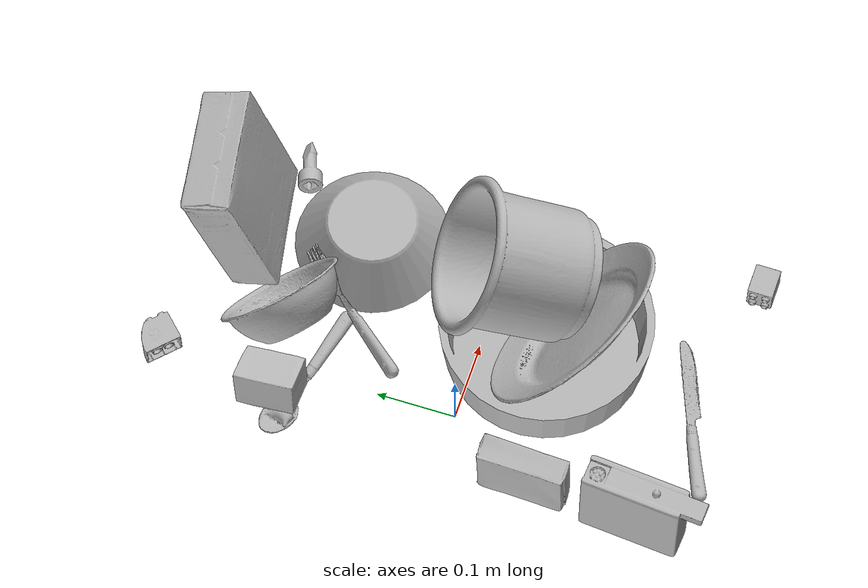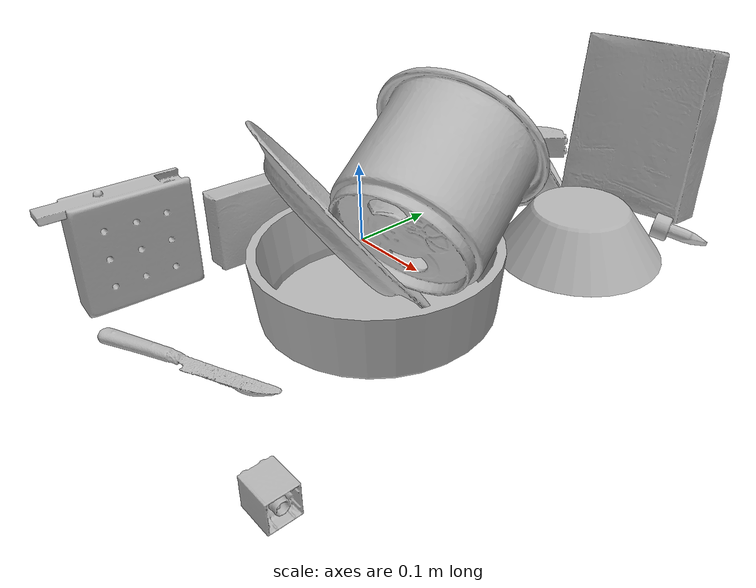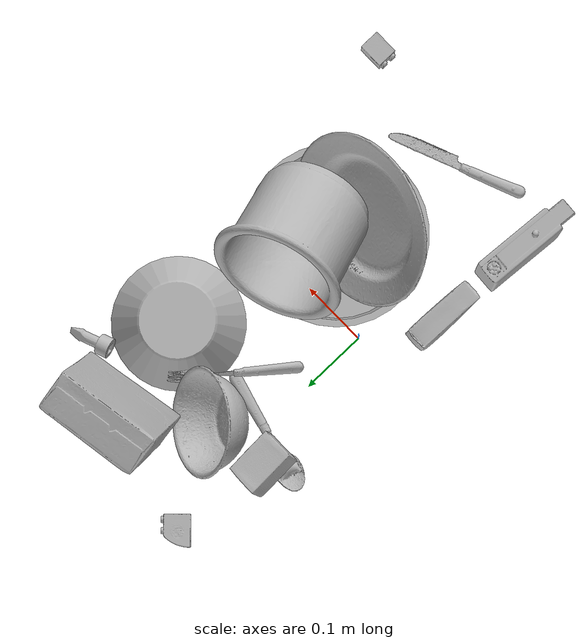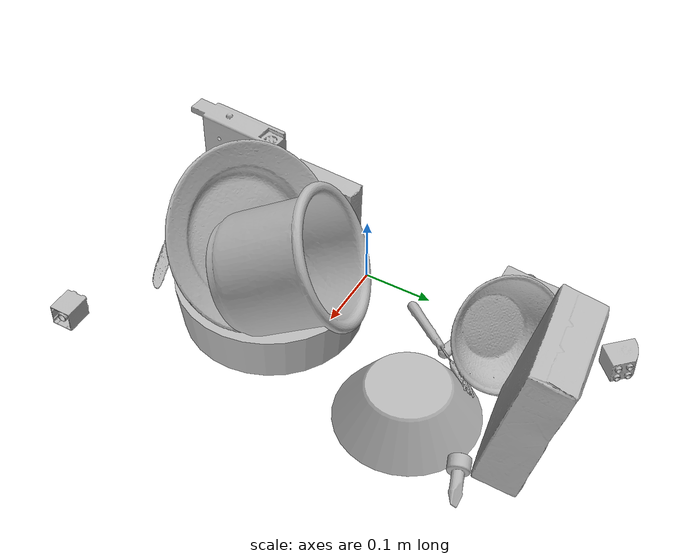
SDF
<sdf version="1.4">
  <world name="default">
    <light name="light1" type="point">
      <pose>0 0 1 0 0 0</pose>
      <diffuse>3 3 3 1</diffuse>
      <specular>3 3 3 1</specular>
    </light>
    <light name="light2" type="point">
      <pose>0 0.5 2 0 0 0</pose>
      <diffuse>1 1 1 1</diffuse>
      <specular>1 1 1 1</specular>
    </light>
    <light name="light3" type="point">
      <pose>0 0.5 2 0 0 0</pose>
      <diffuse>3 3 3 1</diffuse>
      <specular>3 3 3 1</specular>
    </light>
    <scene>
      <ambient>0.7 0.7 0.7</ambient>
    </scene>
    <model name="plate1">
      <link name="link_plate1">
        <collision name="default">
          <geometry>
            <mesh>
              <uri>model://pan_tefal/collision_meshes/collision.obj</uri>
              <scale>1.0 1.0 1.0</scale>
            </mesh>
          </geometry>
          <surface>
            <friction>
              <ode>
                <mu>0.5</mu>
                <mu2>0.5</mu2>
              </ode>
            </friction>
          <contact>
        <ode>
            <max_vel>0</max_vel>
            <min_depth>0.0001</min_depth>
            <kp>1e8</kp>
        </ode>
    </contact></surface>
        </collision>
        <visual name="default">
          <geometry>
            <mesh>
              <uri>model://pan_tefal/visual_meshes/visual.dae</uri>
              <scale>1.0 1.0 1.0</scale>
            </mesh>
          </geometry>
        </visual>
        <inertial>
          <mass>0.7050602436065674</mass>
          <pose>-0.00018002082651946694 3.279098018538207e-05 -0.008514933288097382 0.0008190340203057913 -0.0003301288692481796 -0.3318720847028622</pose>
          <inertia>
            <ixx>0.0048669963</ixx>
            <iyy>0.0048983735</iyy>
            <izz>0.008959204</izz>
            <ixy>0</ixy>
            <ixz>0</ixz>
            <iyz>0</iyz>
          </inertia>
        </inertial>
      </link>
      <pose>0.12451103329658508 -0.07719253748655319 0.03804996609687805 -3.400359482425797e-06 -1.981518553057769e-08 2.7831770010465036</pose>
    </model>
    <model name="plate2">
      <link name="link_plate2">
        <collision name="default">
          <geometry>
            <mesh>
              <uri>model://plate/collision_meshes/collision.obj</uri>
              <scale>1.0 1.0 1.0</scale>
            </mesh>
          </geometry>
          <surface>
            <friction>
              <ode>
                <mu>0.5</mu>
                <mu2>0.5</mu2>
              </ode>
            </friction>
          <contact>
        <ode>
            <max_vel>0</max_vel>
            <min_depth>0.0001</min_depth>
            <kp>1e8</kp>
        </ode>
    </contact></surface>
        </collision>
        <visual name="default">
          <geometry>
            <mesh>
              <uri>model://plate/visual_meshes/visual.dae</uri>
              <scale>1.0 1.0 1.0</scale>
            </mesh>
          </geometry>
        </visual>
        <inertial>
          <mass>0.2442774623632431</mass>
          <pose>-0.0006044568726792932 0.0002782584633678198 -0.0010561984963715076 0.0022187778178748897 -0.0032254919076997847 0.45261061169843664</pose>
          <inertia>
            <ixx>0.0011427345</ixx>
            <iyy>0.001131805</iyy>
            <izz>0.002235018</izz>
            <ixy>0</ixy>
            <ixz>0</ixz>
            <iyz>0</iyz>
          </inertia>
        </inertial>
      </link>
      <pose>0.11184891313314438 -0.11985953152179718 0.1096838042140007 -0.9288108312663818 0.01614466425789696 -0.28865059567174156</pose>
    </model>
    <model name="bowl1">
      <link name="link_bowl1">
        <collision name="default">
          <geometry>
            <mesh>
              <uri>model://bowl_a/collision_meshes/collision.obj</uri>
              <scale>1.0 1.0 1.0</scale>
            </mesh>
          </geometry>
          <surface>
            <friction>
              <ode>
                <mu>0.5</mu>
                <mu2>0.5</mu2>
              </ode>
            </friction>
          <contact>
        <ode>
            <max_vel>0</max_vel>
            <min_depth>0.0001</min_depth>
            <kp>1e8</kp>
        </ode>
    </contact></surface>
        </collision>
        <visual name="default">
          <geometry>
            <mesh>
              <uri>model://bowl_a/visual_meshes/visual.dae</uri>
              <scale>1.0 1.0 1.0</scale>
            </mesh>
          </geometry>
        </visual>
        <inertial>
          <mass>0.4025156497955322</mass>
          <pose>0.00027867371682077646 4.731032458948903e-05 -0.0013765298062935472 -0.00098054011869292 -0.0010938175729232503 -0.19123339485915475</pose>
          <inertia>
            <ixx>0.0011459808</ixx>
            <iyy>0.0011530165</iyy>
            <izz>0.0020381706</izz>
            <ixy>0</ixy>
            <ixz>0</ixz>
            <iyz>0</iyz>
          </inertia>
        </inertial>
      </link>
      <pose>0.19628919661045074 0.17080269753932953 0.029708685353398323 -3.1390927129637847 -0.0010534100431967735 -2.64056885148524</pose>
    </model>
    <model name="bowl2">
      <link name="link_bowl2">
        <collision name="default">
          <geometry>
            <mesh>
              <uri>model://bowl/collision_meshes/collision.obj</uri>
              <scale>1.0 1.0 1.0</scale>
            </mesh>
          </geometry>
          <surface>
            <friction>
              <ode>
                <mu>0.5</mu>
                <mu2>0.5</mu2>
              </ode>
            </friction>
          <contact>
        <ode>
            <max_vel>0</max_vel>
            <min_depth>0.0001</min_depth>
            <kp>1e8</kp>
        </ode>
    </contact></surface>
        </collision>
        <visual name="default">
          <geometry>
            <mesh>
              <uri>model://bowl/visual_meshes/visual.dae</uri>
              <scale>1.0 1.0 1.0</scale>
            </mesh>
          </geometry>
        </visual>
        <inertial>
          <mass>0.04694162309169769</mass>
          <pose>0.00020445318659767509 -0.001030211104080081 -0.0008042642730288208 -0.01576400215318024 0.014546874726031786 0.7140460761636136</pose>
          <inertia>
            <ixx>0.0001078286</ixx>
            <iyy>0.000105419305</iyy>
            <izz>0.00018140484</izz>
            <ixy>0</ixy>
            <ixz>0</ixz>
            <iyz>0</iyz>
          </inertia>
        </inertial>
      </link>
      <pose>0.0536455400288105 0.2317802459001541 0.057759132236242294 0.9524842523503608 -0.4577522768125154 2.7599572885010217</pose>
    </model>
    <model name="silverware1">
      <link name="link_silverware1">
        <collision name="default">
          <geometry>
            <mesh>
              <uri>model://spoon/collision_meshes/collision.obj</uri>
              <scale>1.0 1.0 1.0</scale>
            </mesh>
          </geometry>
          <surface>
            <friction>
              <ode>
                <mu>0.5</mu>
                <mu2>0.5</mu2>
              </ode>
            </friction>
          <contact>
        <ode>
            <max_vel>0</max_vel>
            <min_depth>0.0001</min_depth>
            <kp>1e8</kp>
        </ode>
    </contact></surface>
        </collision>
        <visual name="default">
          <geometry>
            <mesh>
              <uri>model://spoon/visual_meshes/visual.dae</uri>
              <scale>1.0 1.0 1.0</scale>
            </mesh>
          </geometry>
        </visual>
        <inertial>
          <mass>0.03710600733757019</mass>
          <pose>-0.005526318680495024 -0.0016034168656915426 -0.0007271650829352438 0.03521602429168162 -0.03906583039209626 0.006150612964611125</pose>
          <inertia>
            <ixx>2.0638956e-06</ixx>
            <iyy>0.00014118708</iyy>
            <izz>0.00014220492</izz>
            <ixy>0</ixy>
            <ixz>0</ixz>
            <iyz>0</iyz>
          </inertia>
        </inertial>
      </link>
      <pose>-0.0053451950661838055 0.1874048411846161 0.008384764194488525 0.006278884288988027 0.026902368653521667 2.8866457869870157</pose>
    </model>
    <model name="box1">
      <link name="link_box1">
        <collision name="default">
          <geometry>
            <mesh>
              <uri>model://cracker_box/collision_meshes/collision.obj</uri>
              <scale>1.0 1.0 1.0</scale>
            </mesh>
          </geometry>
          <surface>
            <friction>
              <ode>
                <mu>0.5</mu>
                <mu2>0.5</mu2>
              </ode>
            </friction>
          <contact>
        <ode>
            <max_vel>0</max_vel>
            <min_depth>0.0001</min_depth>
            <kp>1e8</kp>
        </ode>
    </contact></surface>
        </collision>
        <visual name="default">
          <geometry>
            <mesh>
              <uri>model://cracker_box/visual_meshes/visual.dae</uri>
              <scale>1.0 1.0 1.0</scale>
            </mesh>
          </geometry>
        </visual>
        <inertial>
          <mass>2.252173662185669</mass>
          <pose>0.0009464137838222086 0.0002543425071053207 -0.0017029535956680775 -0.000316207513865998 -0.011106489600465836 0.0025467954670329632</pose>
          <inertia>
            <ixx>0.0057285246</ixx>
            <iyy>0.00945892</iyy>
            <izz>0.013498746</izz>
            <ixy>0</ixy>
            <ixz>0</ixz>
            <iyz>0</iyz>
          </inertia>
        </inertial>
      </link>
      <pose>0.16511589288711548 0.33166223764419556 0.10841579735279083 -3.0679717978011842 1.308318660394251 -1.330435257714191</pose>
    </model>
    <model name="box2">
      <link name="link_box2">
        <collision name="default">
          <geometry>
            <mesh>
              <uri>model://pudding_box/collision_meshes/collision.obj</uri>
              <scale>1.0 1.0 1.0</scale>
            </mesh>
          </geometry>
          <surface>
            <friction>
              <ode>
                <mu>0.5</mu>
                <mu2>0.5</mu2>
              </ode>
            </friction>
          <contact>
        <ode>
            <max_vel>0</max_vel>
            <min_depth>0.0001</min_depth>
            <kp>1e8</kp>
        </ode>
    </contact></surface>
        </collision>
        <visual name="default">
          <geometry>
            <mesh>
              <uri>model://pudding_box/visual_meshes/visual.dae</uri>
              <scale>1.0 1.0 1.0</scale>
            </mesh>
          </geometry>
        </visual>
        <inertial>
          <mass>0.38795164227485657</mass>
          <pose>0.0004894821904599667 0.0008067885646596551 -0.0005188827635720372 0.005213102258195884 -0.006603798723254801 0.020079825158131615</pose>
          <inertia>
            <ixx>0.00043855933</ixx>
            <iyy>0.00029506587</iyy>
            <izz>0.0006476475</izz>
            <ixy>0</ixy>
            <ixz>0</ixz>
            <iyz>0</iyz>
          </inertia>
        </inertial>
      </link>
      <pose>-0.06282428652048111 -0.10707709938287735 0.04517776519060135 -0.4108275939119818 1.549435817879998 -0.44359481619891505</pose>
    </model>
    <model name="cup1">
      <link name="link_cup1">
        <collision name="default">
          <geometry>
            <mesh>
              <uri>model://i_cups/collision_meshes/collision.obj</uri>
              <scale>2.0 2.0 2.0</scale>
            </mesh>
          </geometry>
          <surface>
            <friction>
              <ode>
                <mu>0.5</mu>
                <mu2>0.5</mu2>
              </ode>
            </friction>
          <contact>
        <ode>
            <max_vel>0</max_vel>
            <min_depth>0.0001</min_depth>
            <kp>1e8</kp>
        </ode>
    </contact></surface>
        </collision>
        <visual name="default">
          <geometry>
            <mesh>
              <uri>model://i_cups/visual_meshes/visual.dae</uri>
              <scale>2.0 2.0 2.0</scale>
            </mesh>
          </geometry>
        </visual>
        <inertial>
          <mass>0.8781275153160095</mass>
          <pose>0.00022480404004454613 0.0003359464171808213 -0.0017158013070002198 -0.028983801808433914 -0.03987279960401974 -0.34589629987983705</pose>
          <inertia>
            <ixx>0.004863122</ixx>
            <iyy>0.004905971</iyy>
            <izz>0.005435325</izz>
            <ixy>0</ixy>
            <ixz>0</ixz>
            <iyz>0</iyz>
          </inertia>
        </inertial>
      </link>
      <pose>0.157593235373497 -0.03192514926195145 0.13509654998779297 -0.6176456710454504 1.004202952601025 1.1803081487647131</pose>
    </model>
    <model name="silverware2">
      <link name="link_silverware2">
        <collision name="default">
          <geometry>
            <mesh>
              <uri>model://fork/collision_meshes/collision.obj</uri>
              <scale>1.0 1.0 1.0</scale>
            </mesh>
          </geometry>
          <surface>
            <friction>
              <ode>
                <mu>0.5</mu>
                <mu2>0.5</mu2>
              </ode>
            </friction>
          <contact>
        <ode>
            <max_vel>0</max_vel>
            <min_depth>0.0001</min_depth>
            <kp>1e8</kp>
        </ode>
    </contact></surface>
        </collision>
        <visual name="default">
          <geometry>
            <mesh>
              <uri>model://fork/visual_meshes/visual.dae</uri>
              <scale>1.0 1.0 1.0</scale>
            </mesh>
          </geometry>
        </visual>
        <inertial>
          <mass>0.027322283014655113</mass>
          <pose>-0.02957003377377987 0.0004658822435885668 0.0003218860656488687 -0.013551502868568713 -0.01097783467120204 0.01445389601768567</pose>
          <inertia>
            <ixx>9.578007e-07</ixx>
            <iyy>7.133063e-05</iyy>
            <izz>7.175903e-05</izz>
            <ixy>0</ixy>
            <ixz>0</ixz>
            <iyz>0</iyz>
          </inertia>
        </inertial>
      </link>
      <pose>0.08593498170375824 0.16219082474708557 0.021508794277906418 2.2478412580342964 -0.14219643129352305 0.9088989068421033</pose>
    </model>
    <model name="silverware3">
      <link name="link_silverware3">
        <collision name="default">
          <geometry>
            <mesh>
              <uri>model://knife/collision_meshes/collision.obj</uri>
              <scale>1.0 1.0 1.0</scale>
            </mesh>
          </geometry>
          <surface>
            <friction>
              <ode>
                <mu>0.5</mu>
                <mu2>0.5</mu2>
              </ode>
            </friction>
          <contact>
        <ode>
            <max_vel>0</max_vel>
            <min_depth>0.0001</min_depth>
            <kp>1e8</kp>
        </ode>
    </contact></surface>
        </collision>
        <visual name="default">
          <geometry>
            <mesh>
              <uri>model://knife/visual_meshes/visual.dae</uri>
              <scale>1.0 1.0 1.0</scale>
            </mesh>
          </geometry>
        </visual>
        <inertial>
          <mass>0.036400385200977325</mass>
          <pose>-0.02378525584936142 0.0015275126788765192 5.0620175898075104e-05 0.07305876248658423 0.017248417790611748 -0.007409819472147862</pose>
          <inertia>
            <ixx>1.0331904e-06</ixx>
            <iyy>0.00013984439</iyy>
            <izz>0.00014017712</izz>
            <ixy>0</ixy>
            <ixz>0</ixz>
            <iyz>0</iyz>
          </inertia>
        </inertial>
      </link>
      <pose>0.08139098435640335 -0.2796620726585388 0.007946574129164219 -0.023844839548736643 -0.014543234123507819 0.37570204864915874</pose>
    </model>
    <model name="toy1">
      <link name="link_toy1">
        <collision name="default">
          <geometry>
            <mesh>
              <uri>model://d_lego_duplo/collision_meshes/collision.obj</uri>
              <scale>1.0 1.0 1.0</scale>
            </mesh>
          </geometry>
          <surface>
            <friction>
              <ode>
                <mu>0.5</mu>
                <mu2>0.5</mu2>
              </ode>
            </friction>
          <contact>
        <ode>
            <max_vel>0</max_vel>
            <min_depth>0.0001</min_depth>
            <kp>1e8</kp>
        </ode>
    </contact></surface>
        </collision>
        <visual name="default">
          <geometry>
            <mesh>
              <uri>model://d_lego_duplo/visual_meshes/visual.dae</uri>
              <scale>1.0 1.0 1.0</scale>
            </mesh>
          </geometry>
        </visual>
        <inertial>
          <mass>0.060466669499874115</mass>
          <pose>0.002830563113093376 0.00016366162162739784 0.0008589806384406984 0.08010949306805684 -0.3835523000845375 0.0010296676643477064</pose>
          <inertia>
            <ixx>1.1705457e-05</ixx>
            <iyy>1.6613216e-05</iyy>
            <izz>1.6021117e-05</izz>
            <ixy>0</ixy>
            <ixz>0</ixz>
            <iyz>0</iyz>
          </inertia>
        </inertial>
      </link>
      <pose>-0.0159782562404871 0.38125544786453247 0.01638088934123516 -1.5706259757108652 -0.007909807340363745 -0.7774645464370469</pose>
    </model>
    <model name="toy2">
      <link name="link_toy2">
        <collision name="default">
          <geometry>
            <mesh>
              <uri>model://b_lego_duplo/collision_meshes/collision.obj</uri>
              <scale>1.0 1.0 1.0</scale>
            </mesh>
          </geometry>
          <surface>
            <friction>
              <ode>
                <mu>0.5</mu>
                <mu2>0.5</mu2>
              </ode>
            </friction>
          <contact>
        <ode>
            <max_vel>0</max_vel>
            <min_depth>0.0001</min_depth>
            <kp>1e8</kp>
        </ode>
    </contact></surface>
        </collision>
        <visual name="default">
          <geometry>
            <mesh>
              <uri>model://b_lego_duplo/visual_meshes/visual.dae</uri>
              <scale>1.0 1.0 1.0</scale>
            </mesh>
          </geometry>
        </visual>
        <inertial>
          <mass>0.030077241361141205</mass>
          <pose>-0.00011053079651901498 -9.15232340048533e-06 0.0019294286612421274 -0.037494862621914114 -0.026354003688684128 0.4518993950044185</pose>
          <inertia>
            <ixx>6.155532e-06</ixx>
            <iyy>6.196912e-06</iyy>
            <izz>5.4843786e-06</izz>
            <ixy>0</ixy>
            <ixz>0</ixz>
            <iyz>0</iyz>
          </inertia>
        </inertial>
      </link>
      <pose>0.27672281861305237 -0.3116098940372467 0.01618071459233761 0.043837503209564456 -1.5623848962715978 -0.050524312273453977</pose>
    </model>
    <model name="toy3">
      <link name="link_toy3">
        <collision name="default">
          <geometry>
            <mesh>
              <uri>model://nine_hole_peg_test/collision_meshes/collision.obj</uri>
              <scale>1.0 1.0 1.0</scale>
            </mesh>
          </geometry>
          <surface>
            <friction>
              <ode>
                <mu>0.5</mu>
                <mu2>0.5</mu2>
              </ode>
            </friction>
          <contact>
        <ode>
            <max_vel>0</max_vel>
            <min_depth>0.0001</min_depth>
            <kp>1e8</kp>
        </ode>
    </contact></surface>
        </collision>
        <visual name="default">
          <geometry>
            <mesh>
              <uri>model://nine_hole_peg_test/visual_meshes/visual.dae</uri>
              <scale>1.0 1.0 1.0</scale>
            </mesh>
          </geometry>
        </visual>
        <inertial>
          <mass>0.9411391019821167</mass>
          <pose>-0.0046173869632184505 -0.009647615253925323 2.646069333422929e-05 -0.0014666795036135398 0.0007194176186147546 -0.6342417663820423</pose>
          <inertia>
            <ixx>0.0014716258</ixx>
            <iyy>0.0013740414</iyy>
            <izz>0.0025787223</izz>
            <ixy>0</ixy>
            <ixz>0</ixz>
            <iyz>0</iyz>
          </inertia>
        </inertial>
      </link>
      <pose>-0.07266411185264587 -0.2589123845100403 0.06864647567272186 -1.5295605454052017 -1.563801324452961 -1.6901262437833668</pose>
    </model>
    <model name="toy4">
      <link name="link_toy4">
        <collision name="default">
          <geometry>
            <mesh>
              <uri>model://foam_brick/collision_meshes/collision.obj</uri>
              <scale>1.0 1.0 1.0</scale>
            </mesh>
          </geometry>
          <surface>
            <friction>
              <ode>
                <mu>0.5</mu>
                <mu2>0.5</mu2>
              </ode>
            </friction>
          <contact>
        <ode>
            <max_vel>0</max_vel>
            <min_depth>0.0001</min_depth>
            <kp>1e8</kp>
        </ode>
    </contact></surface>
        </collision>
        <visual name="default">
          <geometry>
            <mesh>
              <uri>model://foam_brick/visual_meshes/visual.dae</uri>
              <scale>1.0 1.0 1.0</scale>
            </mesh>
          </geometry>
        </visual>
        <inertial>
          <mass>0.1527709662914276</mass>
          <pose>-0.00025224717683158815 0.0003458428254816681 -0.00025321016437374055 -0.29402015796081304 0.017274438268763303 -0.0007449889855682301</pose>
          <inertia>
            <ixx>6.673321e-05</ixx>
            <iyy>0.00010654301</iyy>
            <izz>0.00010789704</izz>
            <ixy>0</ixy>
            <ixz>0</ixz>
            <iyz>0</iyz>
          </inertia>
        </inertial>
      </link>
      <pose>-0.036317866295576096 0.22598448395729065 0.03413204103708267 1.8147287729654684 0.09715222456632612 1.6032887724802012</pose>
    </model>
    <model name="toy5">
      <link name="link_toy5">
        <collision name="default">
          <geometry>
            <mesh>
              <uri>model://e_toy_airplane/collision_meshes/collision.obj</uri>
              <scale>1.0 1.0 1.0</scale>
            </mesh>
          </geometry>
          <surface>
            <friction>
              <ode>
                <mu>0.5</mu>
                <mu2>0.5</mu2>
              </ode>
            </friction>
          <contact>
        <ode>
            <max_vel>0</max_vel>
            <min_depth>0.0001</min_depth>
            <kp>1e8</kp>
        </ode>
    </contact></surface>
        </collision>
        <visual name="default">
          <geometry>
            <mesh>
              <uri>model://e_toy_airplane/visual_meshes/visual.dae</uri>
              <scale>1.0 1.0 1.0</scale>
            </mesh>
          </geometry>
        </visual>
        <inertial>
          <mass>0.01976589486002922</mass>
          <pose>0.00011740453192032874 -2.2483010980067775e-05 -0.011187207885086536 0.005518504435964777 0.009228288570086122 0.15041432989491213</pose>
          <inertia>
            <ixx>6.0327766e-06</ixx>
            <iyy>5.971064e-06</iyy>
            <izz>1.813087e-06</izz>
            <ixy>0</ixy>
            <ixz>0</ixz>
            <iyz>0</iyz>
          </inertia>
        </inertial>
      </link>
      <pose>0.26761361956596375 0.2776942849159241 0.012002031318843365 1.7819617176407372 -0.5838921854608486 1.7951738520249305</pose>
    </model>
  <physics type="ode">
      <max_contacts>50</max_contacts>
      <ode>
        <solver>
          <type>quick</type>
          <iters>75</iters>
        </solver>
        <constraints>
          <contact_max_correcting_vel>0</contact_max_correcting_vel>
          <contact_surface_layer>0</contact_surface_layer>
        </constraints>
      </ode>
    </physics></world>
</sdf>
